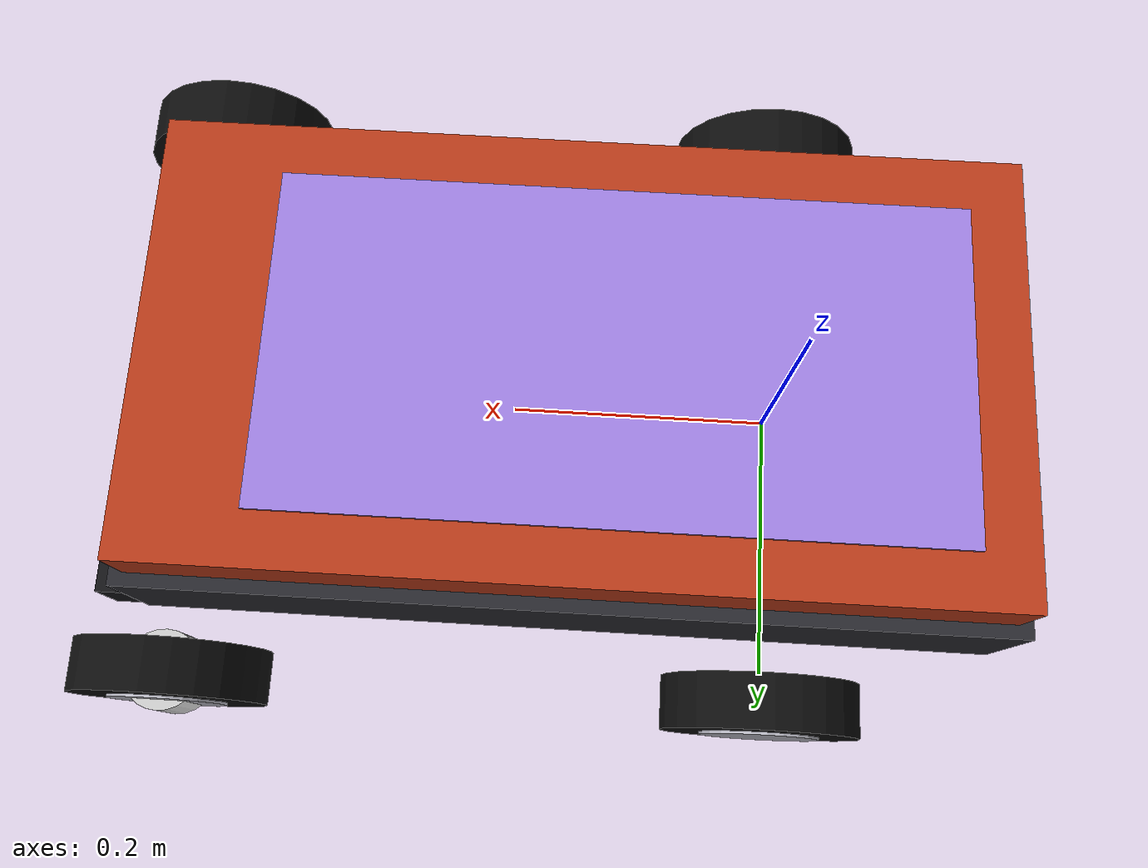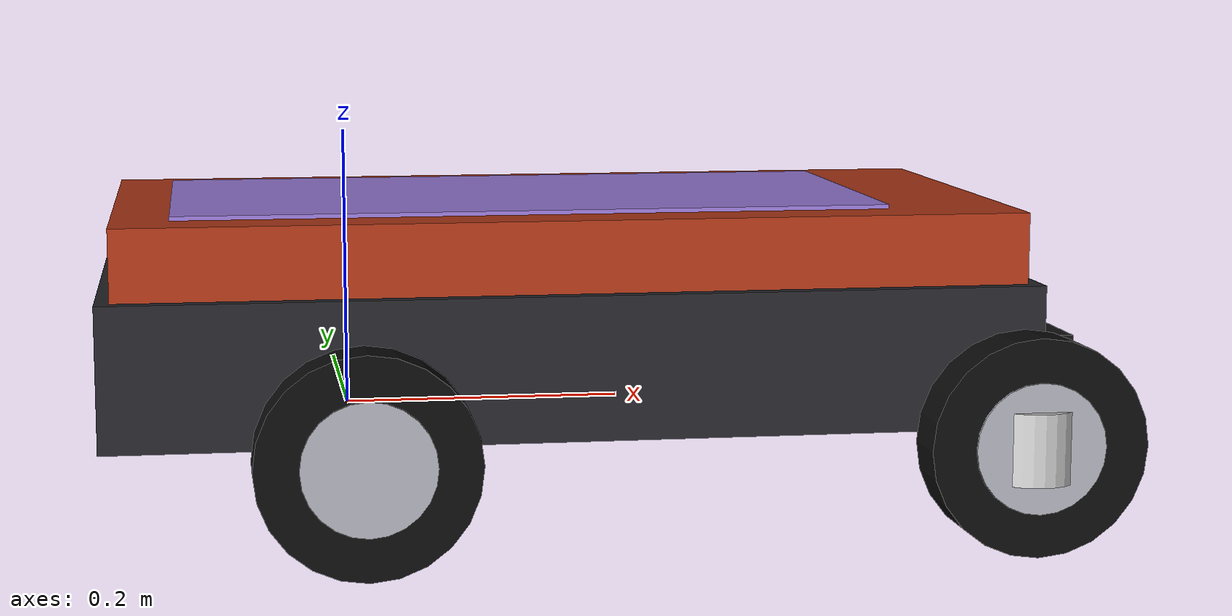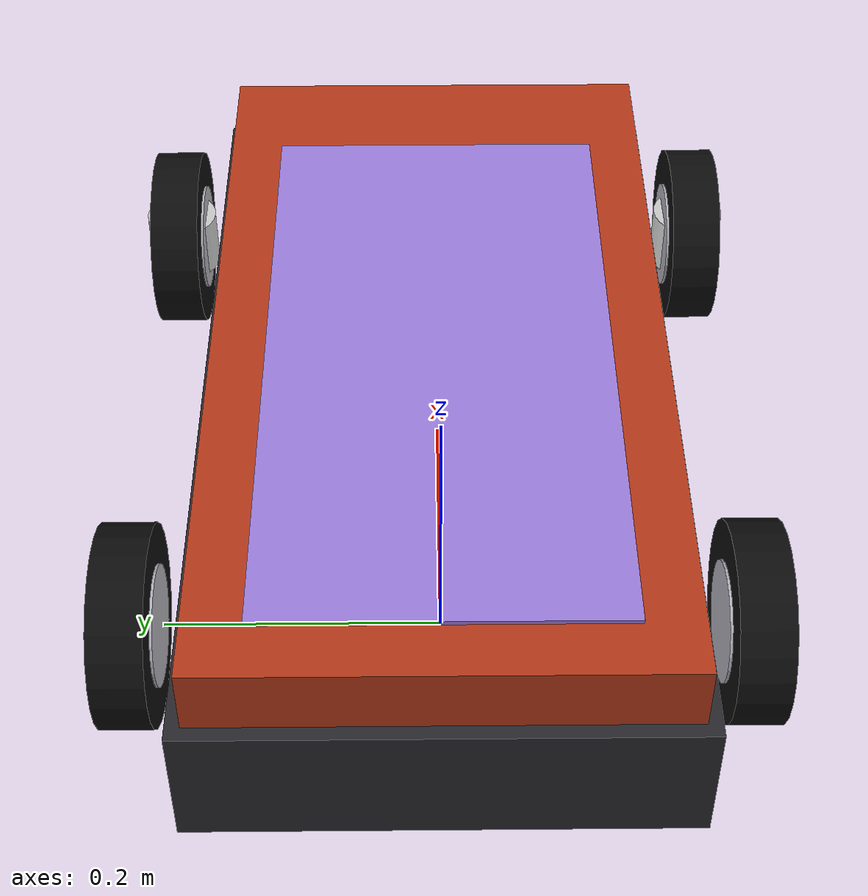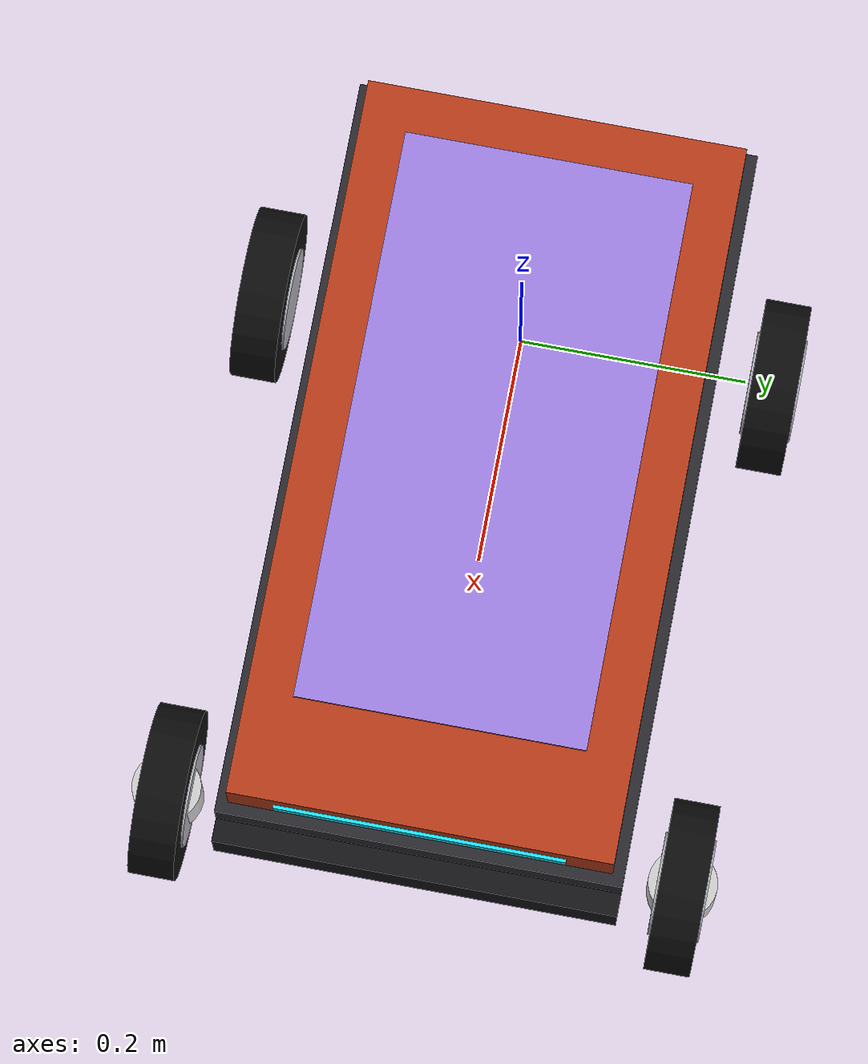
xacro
<?xml version="1.0"?>
<robot name="ackermann_robot" xmlns:xacro="http://www.ros.org/wiki/xacro" xmlns:gazebo="http://gazebo.apache.org/xmlns/gazebo">

  <xacro:include filename="inertial_macros.xacro" />

  <!-- Base Link -->
  <link name="base_link"/>
  <link name="base_footprint">
    <collision>
      <geometry>
        <box size="0.65 0.4 0.01"/>
      </geometry>
    </collision>
  </link>

  <joint name="base_footprint_joint" type="fixed">
    <parent link="base_link"/>
    <child link="base_footprint"/>
    <origin xyz="0 0 -0.05"/>
  </joint>

  <!-- Chassis — longer than wide, car-like -->
  <joint name="chassis_joint" type="fixed">
    <parent link="base_link"/>
    <child link="chassis"/>
    <origin xyz="-0.15 0 0"/>
  </joint>

  <link name="chassis">
    <visual>
      <origin xyz="0.3 0 0.05"/>
      <geometry><box size="0.65 0.35 0.10"/></geometry>
      <material name="skirt_material"><color rgba="0.16 0.16 0.18 1.0"/></material>
    </visual>
    <visual>
      <origin xyz="0.3 0 0.125"/>
      <geometry><box size="0.63 0.33 0.05"/></geometry>
      <material name="chassis_material"><color rgba="0.72 0.23 0.10 1.0"/></material>
    </visual>
    <visual>
      <origin xyz="0.27499999999999997 0 0.151"/>
      <geometry><box size="0.50 0.25 0.004"/></geometry>
      <material name="accent_material"><color rgba="0.62 0.50 0.88 1.0"/></material>
    </visual>
    <visual>
      <origin xyz="0.635 0 0.04"/>
      <geometry><box size="0.02 0.35 0.05"/></geometry>
      <material name="bumper_material"><color rgba="0.08 0.08 0.09 1.0"/></material>
    </visual>
    <visual>
      <origin xyz="0.616 0 0.125"/>
      <geometry><box size="0.004 0.25 0.012"/></geometry>
      <material name="led_material"><color rgba="0.1 0.9 1.0 1.0"/></material>
    </visual>
    <collision>
      <origin xyz="0.3 0 0.075"/>
      <geometry>
        <box size="0.65 0.32 0.15"/>
      </geometry>
    </collision>
    <xacro:inertial_box mass="0.6" x="0.65" y="0.35" z="0.15">
      <origin xyz="0.3 0 0.075" rpy="0 0 0"/>
    </xacro:inertial_box>
  </link>

  <!-- Rear Wheels (driven, fixed — no steering) -->
  <joint name="rear_left_wheel_joint" type="continuous">
    <parent link="base_link"/>
    <child link="rear_left_wheel"/>
    <origin xyz="0 0.225 0" rpy="-1.57 0 0"/>
    <axis xyz="0 0 1"/>
  </joint>

  <link name="rear_left_wheel">
    <visual>
      <geometry>
        <cylinder radius="0.075" length="0.04"/>
      </geometry>
      <material name="wheel_material">
        <color rgba="0.05 0.05 0.05 1.0"/>
      </material>
    </visual>
    <visual>
      <geometry><cylinder radius="0.045" length="0.044"/></geometry>
      <material name="hub_material"><color rgba="0.70 0.70 0.74 1.0"/></material>
    </visual>
    <collision>
      <geometry>
        <cylinder radius="0.075" length="0.04"/>
      </geometry>
    </collision>
    <xacro:inertial_cylinder mass="0.1" length="0.04" radius="0.075">
      <origin xyz="0 0 0" rpy="0 0 0"/>
    </xacro:inertial_cylinder>
  </link>

  <joint name="rear_right_wheel_joint" type="continuous">
    <parent link="base_link"/>
    <child link="rear_right_wheel"/>
    <origin xyz="0 -0.225 0" rpy="1.57 0 0"/>
    <axis xyz="0 0 -1"/>
  </joint>

  <link name="rear_right_wheel">
    <visual>
      <geometry>
        <cylinder radius="0.075" length="0.04"/>
      </geometry>
      <material name="wheel_material">
        <color rgba="0.05 0.05 0.05 1.0"/>
      </material>
    </visual>
    <visual>
      <geometry><cylinder radius="0.045" length="0.044"/></geometry>
      <material name="hub_material"><color rgba="0.70 0.70 0.74 1.0"/></material>
    </visual>
    <collision>
      <geometry>
        <cylinder radius="0.075" length="0.04"/>
      </geometry>
    </collision>
    <xacro:inertial_cylinder mass="0.1" length="0.04" radius="0.075">
      <origin xyz="0 0 0" rpy="0 0 0"/>
    </xacro:inertial_cylinder>
  </link>

  <joint name="front_left_steering_joint" type="revolute">
    <parent link="base_link"/>
    <child link="front_left_steering_link"/>
    <origin xyz="0.45 0.225 0"/>
    <axis xyz="0 0 1"/>
    <limit lower="-0.6" upper="0.6" effort="25" velocity="1.0"/>
  </joint>

  <link name="front_left_steering_link">
    <visual>
      <geometry>
        <cylinder radius="0.03" length="0.05"/>
      </geometry>
      <material name="wheel_material">
        <color rgba="0.8 0.8 0.8 1.0"/>
      </material>
    </visual>
    <collision>
      <geometry>
        <cylinder radius="0.03" length="0.05"/>
      </geometry>
    </collision>
    <xacro:inertial_cylinder mass="0.05" length="0.05" radius="0.03">
      <origin xyz="0 0 0" rpy="0 0 0"/>
    </xacro:inertial_cylinder>
  </link>

  <joint name="front_left_wheel_joint" type="continuous">
    <parent link="front_left_steering_link"/>
    <child link="front_left_wheel"/>
    <origin xyz="0 0 0" rpy="-1.57 0 0"/>
    <axis xyz="0 0 1"/>
  </joint>

  <link name="front_left_wheel">
    <visual>
      <geometry>
        <cylinder radius="0.075" length="0.04"/>
      </geometry>
      <material name="wheel_material">
        <color rgba="0.05 0.05 0.05 1.0"/>
      </material>
    </visual>
    <visual>
      <geometry><cylinder radius="0.045" length="0.044"/></geometry>
      <material name="hub_material"><color rgba="0.70 0.70 0.74 1.0"/></material>
    </visual>
    <collision>
      <geometry>
        <cylinder radius="0.075" length="0.04"/>
      </geometry>
    </collision>
    <xacro:inertial_cylinder mass="0.1" length="0.04" radius="0.075">
      <origin xyz="0 0 0" rpy="0 0 0"/>
    </xacro:inertial_cylinder>
  </link>

  <joint name="front_right_steering_joint" type="revolute">
    <parent link="base_link"/>
    <child link="front_right_steering_link"/>
    <origin xyz="0.45 -0.225 0"/>
    <axis xyz="0 0 1"/>
    <limit lower="-0.6" upper="0.6" effort="25" velocity="1.0"/>
  </joint>

  <link name="front_right_steering_link">
    <visual>
      <geometry>
        <cylinder radius="0.03" length="0.05"/>
      </geometry>
      <material name="wheel_material">
        <color rgba="0.8 0.8 0.8 1.0"/>
      </material>
    </visual>
    <collision>
      <geometry>
        <cylinder radius="0.03" length="0.05"/>
      </geometry>
    </collision>
    <xacro:inertial_cylinder mass="0.05" length="0.05" radius="0.03">
      <origin xyz="0 0 0" rpy="0 0 0"/>
    </xacro:inertial_cylinder>
  </link>

  <joint name="front_right_wheel_joint" type="continuous">
    <parent link="front_right_steering_link"/>
    <child link="front_right_wheel"/>
    <origin xyz="0 0 0" rpy="1.57 0 0"/>
    <axis xyz="0 0 -1"/>
  </joint>

  <link name="front_right_wheel">
    <visual>
      <geometry>
        <cylinder radius="0.075" length="0.04"/>
      </geometry>
      <material name="wheel_material">
        <color rgba="0.05 0.05 0.05 1.0"/>
      </material>
    </visual>
    <visual>
      <geometry><cylinder radius="0.045" length="0.044"/></geometry>
      <material name="hub_material"><color rgba="0.70 0.70 0.74 1.0"/></material>
    </visual>
    <collision>
      <geometry>
        <cylinder radius="0.075" length="0.04"/>
      </geometry>
    </collision>
    <xacro:inertial_cylinder mass="0.1" length="0.04" radius="0.075">
      <origin xyz="0 0 0" rpy="0 0 0"/>
    </xacro:inertial_cylinder>
  </link>

  <!-- Gazebo Parameters -->
  <gazebo reference="chassis">
    <mu1>1.0</mu1>
    <mu2>1.0</mu2>
  </gazebo>

  <gazebo reference="rear_left_wheel">
    <mu1>1.0</mu1>
    <mu2>1.0</mu2>
  </gazebo>

  <gazebo reference="rear_right_wheel">
    <mu1>1.0</mu1>
    <mu2>1.0</mu2>
  </gazebo>

  <gazebo reference="front_left_wheel">
    <mu1>1.0</mu1>
    <mu2>1.0</mu2>
  </gazebo>

  <gazebo reference="front_right_wheel">
    <mu1>1.0</mu1>
    <mu2>1.0</mu2>
  </gazebo>

</robot>
